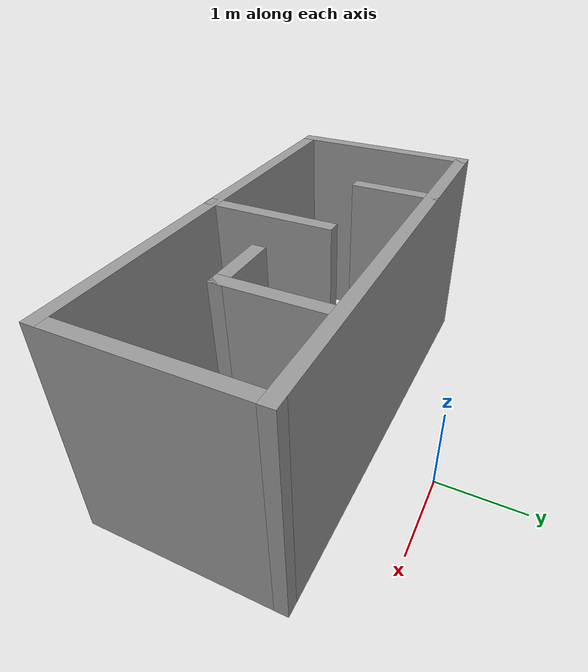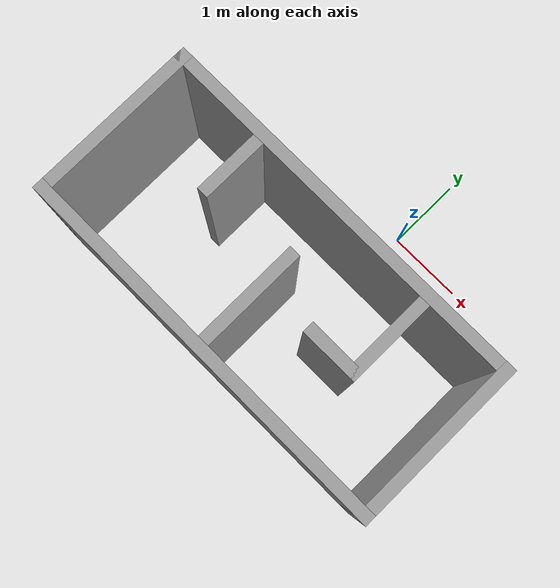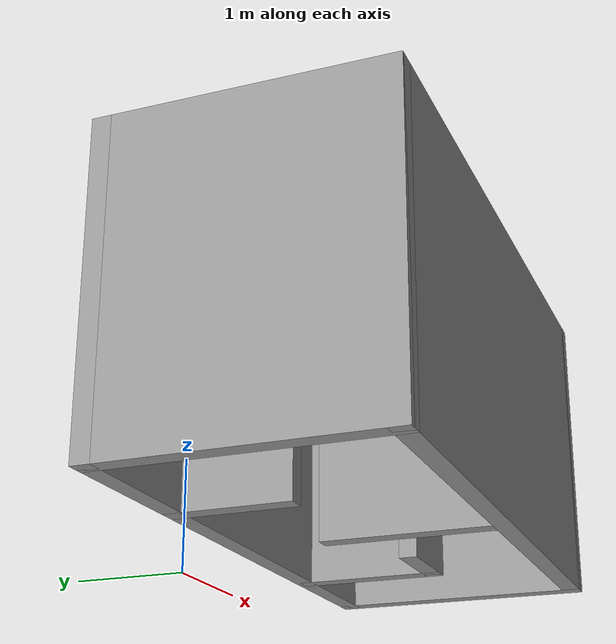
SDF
<?xml version='1.0'?>
<sdf version='1.6'>
  <model name='Maze0'>
    <pose frame=''>-0.505 -1.85 0 0 -0 0</pose>
    <link name='Wall_0'>
      <collision name='Wall_0_Collision'>
        <geometry>
          <box>
            <size>2.25 0.15 2.5</size>
          </box>
        </geometry>
        <pose frame=''>0 0 1.25 0 -0 0</pose>
      </collision>
      <visual name='Wall_0_Visual'>
        <pose frame=''>0 0 1.25 0 -0 0</pose>
        <geometry>
          <box>
            <size>2.25 0.15 2.5</size>
          </box>
        </geometry>
        <material>
          <script>
            <uri>file://media/materials/scripts/gazebo.material</uri>
            <name>Gazebo/Grey</name>
          </script>
          <ambient>1 1 1 1</ambient>
        </material>
        <meta>
          <layer>0</layer>
        </meta>
      </visual>
      <pose frame=''>-2.425 0 0 0 -0 -1.5708</pose>
    </link>
    <link name='Wall_1'>
      <collision name='Wall_1_Collision'>
        <geometry>
          <box>
            <size>5 0.15 2.5</size>
          </box>
        </geometry>
        <pose frame=''>0 0 1.25 0 -0 0</pose>
      </collision>
      <visual name='Wall_1_Visual'>
        <pose frame=''>0 0 1.25 0 -0 0</pose>
        <geometry>
          <box>
            <size>5 0.15 2.5</size>
          </box>
        </geometry>
        <material>
          <script>
            <uri>file://media/materials/scripts/gazebo.material</uri>
            <name>Gazebo/Grey</name>
          </script>
          <ambient>1 1 1 1</ambient>
        </material>
        <meta>
          <layer>0</layer>
        </meta>
      </visual>
      <pose frame=''>0 -1.05 0 0 -0 0</pose>
    </link>
    <link name='Wall_10'>
      <collision name='Wall_10_Collision'>
        <geometry>
          <box>
            <size>0.75 0.15 2.5</size>
          </box>
        </geometry>
        <pose frame=''>0 0 1.25 0 -0 0</pose>
      </collision>
      <visual name='Wall_10_Visual'>
        <pose frame=''>0 0 1.25 0 -0 0</pose>
        <geometry>
          <box>
            <size>0.75 0.15 2.5</size>
          </box>
        </geometry>
        <material>
          <script>
            <uri>file://media/materials/scripts/gazebo.material</uri>
            <name>Gazebo/Grey</name>
          </script>
          <ambient>1 1 1 1</ambient>
        </material>
        <meta>
          <layer>0</layer>
        </meta>
      </visual>
      <pose frame=''>1.015 -0.09 0 0 -0 3.14159</pose>
    </link>
    <link name='Wall_2'>
      <collision name='Wall_2_Collision'>
        <geometry>
          <box>
            <size>2.25 0.15 2.5</size>
          </box>
        </geometry>
        <pose frame=''>0 0 1.25 0 -0 0</pose>
      </collision>
      <visual name='Wall_2_Visual'>
        <pose frame=''>0 0 1.25 0 -0 0</pose>
        <geometry>
          <box>
            <size>2.25 0.15 2.5</size>
          </box>
        </geometry>
        <material>
          <script>
            <uri>file://media/materials/scripts/gazebo.material</uri>
            <name>Gazebo/Grey</name>
          </script>
          <ambient>1 1 1 1</ambient>
        </material>
        <meta>
          <layer>0</layer>
        </meta>
      </visual>
      <pose frame=''>2.425 0 0 0 -0 1.5708</pose>
    </link>
    <link name='Wall_3'>
      <collision name='Wall_3_Collision'>
        <geometry>
          <box>
            <size>5 0.15 2.5</size>
          </box>
        </geometry>
        <pose frame=''>0 0 1.25 0 -0 0</pose>
      </collision>
      <visual name='Wall_3_Visual'>
        <pose frame=''>0 0 1.25 0 -0 0</pose>
        <geometry>
          <box>
            <size>5 0.15 2.5</size>
          </box>
        </geometry>
        <material>
          <script>
            <uri>file://media/materials/scripts/gazebo.material</uri>
            <name>Gazebo/Grey</name>
          </script>
          <ambient>1 1 1 1</ambient>
        </material>
        <meta>
          <layer>0</layer>
        </meta>
      </visual>
      <pose frame=''>0 1.05 0 0 -0 3.14159</pose>
    </link>
    <link name='Wall_5'>
      <collision name='Wall_5_Collision'>
        <geometry>
          <box>
            <size>1 0.15 2.5</size>
          </box>
        </geometry>
        <pose frame=''>0 0 1.25 0 -0 0</pose>
      </collision>
      <visual name='Wall_5_Visual'>
        <pose frame=''>0 0 1.25 0 -0 0</pose>
        <geometry>
          <box>
            <size>1 0.15 2.5</size>
          </box>
        </geometry>
        <material>
          <script>
            <uri>file://media/materials/scripts/gazebo.material</uri>
            <name>Gazebo/Grey</name>
          </script>
          <ambient>1 1 1 1</ambient>
        </material>
        <meta>
          <layer>0</layer>
        </meta>
      </visual>
      <pose frame=''>-1.175 0.625 0 0 -0 1.5708</pose>
    </link>
    <link name='Wall_7'>
      <collision name='Wall_7_Collision'>
        <geometry>
          <box>
            <size>1.5 0.15 2.5</size>
          </box>
        </geometry>
        <pose frame=''>0 0 1.25 0 -0 0</pose>
      </collision>
      <visual name='Wall_7_Visual'>
        <pose frame=''>0 0 1.25 0 -0 0</pose>
        <geometry>
          <box>
            <size>1.5 0.15 2.5</size>
          </box>
        </geometry>
        <material>
          <script>
            <uri>file://media/materials/scripts/gazebo.material</uri>
            <name>Gazebo/Grey</name>
          </script>
          <ambient>1 1 1 1</ambient>
        </material>
        <meta>
          <layer>0</layer>
        </meta>
      </visual>
      <pose frame=''>-0.025 -0.365 0 0 -0 1.5708</pose>
    </link>
    <link name='Wall_9'>
      <collision name='Wall_9_Collision'>
        <geometry>
          <box>
            <size>1.25 0.15 2.5</size>
          </box>
        </geometry>
        <pose frame=''>0 0 1.25 0 -0 0</pose>
      </collision>
      <visual name='Wall_9_Visual'>
        <pose frame=''>0 0 1.25 0 -0 0</pose>
        <geometry>
          <box>
            <size>1.25 0.15 2.5</size>
          </box>
        </geometry>
        <material>
          <script>
            <uri>file://media/materials/scripts/gazebo.material</uri>
            <name>Gazebo/Grey</name>
          </script>
          <ambient>1 1 1 1</ambient>
        </material>
        <meta>
          <layer>0</layer>
        </meta>
      </visual>
      <pose frame=''>1.315 0.46 0 0 -0 -1.5708</pose>
    </link>
    <static>1</static>
  </model>
</sdf>
